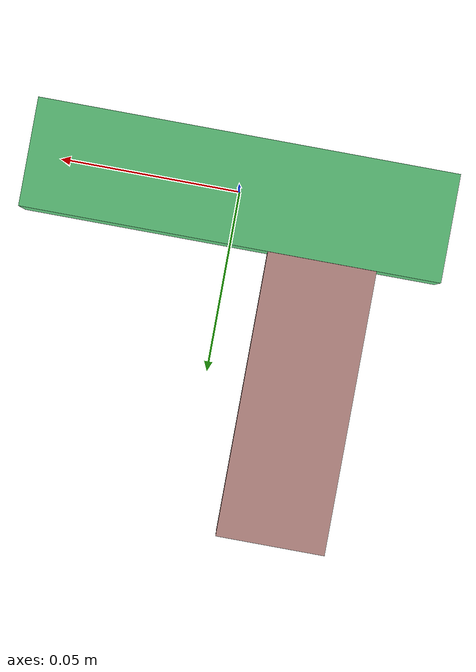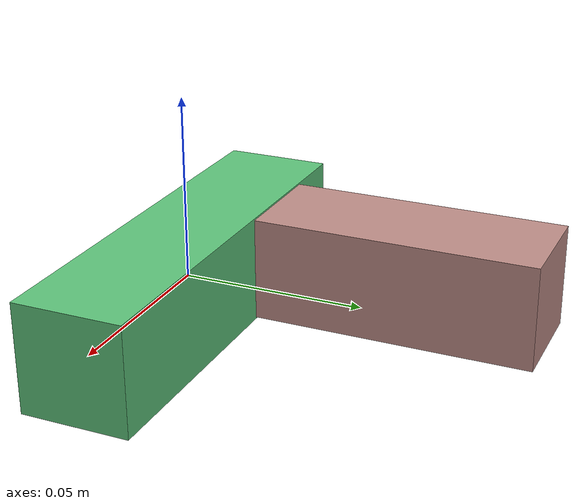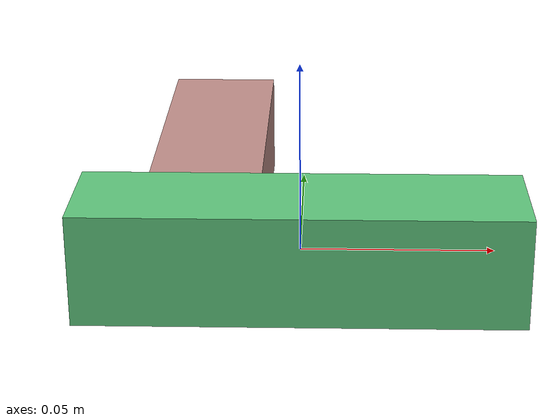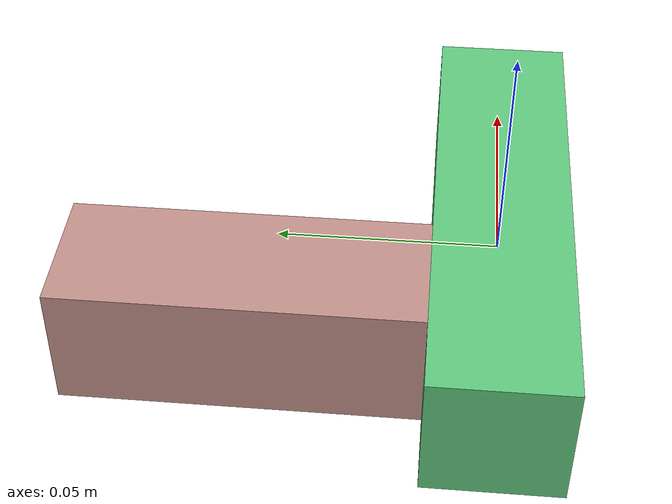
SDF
<sdf version="1.4"><world name="default"><model name="object0"><link name="link1"><pose>0 0 0 0 0 0</pose><inertial><pose>0 0 0 0 0 0</pose><mass>0.06285962403511908</mass><inertia><ixx>9.428943605267862e-06</ixx><ixy>0</ixy><iyy>7.569620046712104e-05</iyy><ixz>0</ixz><iyz>0</iyz><izz>7.569620046712104e-05</izz></inertia></inertial><visual name="link1_visual"><pose>0 0  0 0 0 0</pose><geometry><box><size>0.11640671117614644 0.03 0.03</size></box></geometry><material><diffuse>0.3707887990502084 0.7770959550399035 0.4863816492472793 1</diffuse></material></visual><collision><pose>0 0  0 0 0 0</pose><geometry><box><size>0.11640671117614644 0.03 0.03</size></box></geometry></collision></link><link name="link2"><pose>-0.025538949816279386 0.04515900268104582 0 0 0 0</pose><inertial><pose>0 0 0 0 0 0</pose><mass>0.05213179696936124</mass><inertia><ixx>4.4142781665096614e-05</ixx><ixy>0</ixy><iyy>7.5634548769714925e-06</iyy><ixz>0</ixz><iyz>0</iyz><izz>4.439909633352931e-05</izz></inertia></inertial><visual name="link2_visual"><pose>0 0  0 0 0 0</pose><geometry><box><size>0.03 0.09654036475807637 0.028999999999999998</size></box></geometry><material><diffuse>0.7526149481566498 0.5599587143786332 0.5373967595077921 1</diffuse></material></visual><collision><pose>0 0  0 0 0 0</pose><geometry><box><size>0.03 0.09654036475807637 0.028999999999999998</size></box></geometry></collision></link><joint name="link_joint_0" type="fixed"><parent>link1</parent><child>link2</child><pose>0 0 0 0 0 0</pose><axis><xyz>0 0 1</xyz></axis></joint></model></world></sdf>
